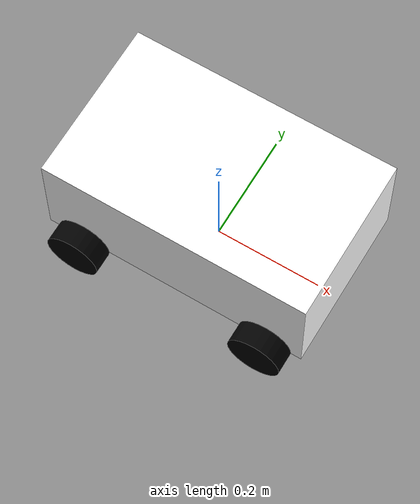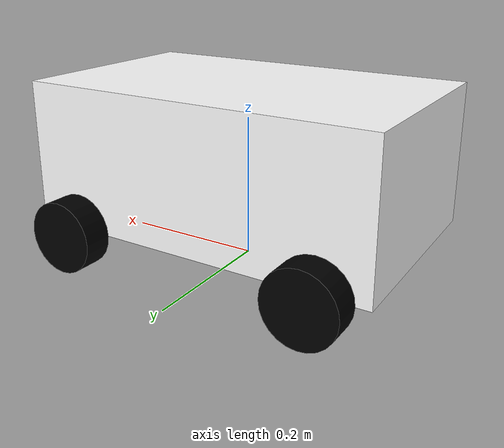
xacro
<?xml version="1.0"?>
<robot xmlns:xacro="http://www.ros.org/wiki/xacro" name="mbot">
<!-- 选择是否用仿真 -->
<xacro:arg name="use_sim" default="true" />

<xacro:include filename="base.urdf.xacro" />
<xacro:include filename="actuator/wheel.urdf.xacro" />
<xacro:include filename="sensor/lidar.urdf.xacro" />
<xacro:include filename="sensor/imu.urdf.xacro" />
<xacro:include filename="ros2_control.xacro" />
<xacro:include filename="$(find mbot_description)/urdf/plugin/gazebo_sensor_plugin.xacro" />

<!-- 声明机器人长宽高 -->
<xacro:property name="car_length" value="0.5" />
<xacro:property name="car_width" value="0.3" />
<xacro:property name="car_height" value="0.2" />
<xacro:property name="car_mass" value="5.0" />

<!-- 声明底板厚度 -->
<xacro:property name="plate_thickness" value="0.01" />

<!-- 声明lidar尺寸 -->
<xacro:property name="lidar_radius" value="0.035" />
<xacro:property name="lidar_height" value="0.04" />
<xacro:property name="lidar_mass" value="0.2"/>

<!-- 声明imu尺寸 -->
<xacro:property name="imu_length" value="0.02" />
<xacro:property name="imu_weight" value="0.027" />
<xacro:property name="imu_height" value="0.004" />
<xacro:property name="imu_mass" value="0.005"/>

<!-- 声明轮子尺寸 -->
<xacro:property name="wheel_radius" value="0.05" />
<xacro:property name="wheel_width" value="0.04" />
<xacro:property name="wheel_mass" value="0.3" />

<!-- 雷达距离前挡板距离 -->
<xacro:property name="lidar_gap_front" value="0.03" />

<!-- 雷达安装位置 -->
<xacro:property name="lidar_x" value="${(car_length / 2) - lidar_gap_front - lidar_radius}" />
<xacro:property name="lidar_z" value="${-(car_height / 2) + plate_thickness + (lidar_height / 2)}" />

<!-- imu安装位置 -->
<xacro:property name="imu_z"   value="${-(car_height / 2) + 0.005}" />

<!-- 车轮安装位置 -->
<xacro:property name="wheel_joint_z" value="${-(car_height / 2)}" />
<xacro:property name="wheel_joint_x" value="${(car_length / 2) - wheel_radius - 0.02}" />
<xacro:property name="wheel_joint_y" value="${(car_width / 2) + (wheel_width / 2)}" />

<!-- 雷达FOV计算 -->
<xacro:property name="dist_to_front" value="${(car_length / 2) - lidar_x}" />
<xacro:property name="half_width" value="${car_width / 2}" />
<xacro:property name="fov_half_angle" value="${atan2(half_width, dist_to_front)}" />
<xacro:property name="safe_min_angle" value="${-(fov_half_angle - 0.05)}" />
<xacro:property name="safe_max_angle" value="${fov_half_angle - 0.05}" />

<!-- 车体大小 -->
<xacro:base_xacro base_length="${car_length}"
base_width="${car_width}"
base_height="${car_height}"
base_mass="${car_mass}"
plate_thickness="${plate_thickness}"
wheel_radius="${wheel_radius}"/>

<!-- mecanum轮 -->
<xacro:mecanum_wheel prefix="front_left"
    x_reflect="1" y_reflect="1"
    wheel_radius="${wheel_radius}"
    wheel_width="${wheel_width}"
    wheel_mass="${wheel_mass}"
    pos_x="${wheel_joint_x}"
    pos_y="${wheel_joint_y}"
    pos_z="${wheel_joint_z}"
/>

<xacro:mecanum_wheel prefix="front_right"
    x_reflect="1" y_reflect="-1"
    wheel_radius="${wheel_radius}"
    wheel_width="${wheel_width}"
    wheel_mass="${wheel_mass}"
    pos_x="${wheel_joint_x}"
    pos_y="${wheel_joint_y}"
    pos_z="${wheel_joint_z}"
/>

<xacro:mecanum_wheel prefix="rear_left"
    x_reflect="-1" y_reflect="1"
    wheel_radius="${wheel_radius}"
    wheel_width="${wheel_width}"
    wheel_mass="${wheel_mass}"
    pos_x="${wheel_joint_x}"
    pos_y="${wheel_joint_y}"
    pos_z="${wheel_joint_z}"
/>

<xacro:mecanum_wheel prefix="rear_right"
    x_reflect="-1" y_reflect="-1"
    wheel_radius="${wheel_radius}"
    wheel_width="${wheel_width}"
    wheel_mass="${wheel_mass}"
    pos_x="${wheel_joint_x}"
    pos_y="${wheel_joint_y}"
    pos_z="${wheel_joint_z}"
/>

<!-- 传感器生成 -->
<xacro:lidar_xacro prefix="lidar"
    parent="base_link"
    lidar_radius="${lidar_radius}"
    lidar_height="${lidar_height}"
    lidar_mass="${lidar_mass}"
    xyz="${lidar_x} 0 ${lidar_z}"
    rpy="0.0 0.0 0.0"/>

<xacro:imu_xacro prefix="imu_center"
    parent="base_link"
    imu_length="${imu_length}"
    imu_weight="${imu_weight}"
    imu_height="${imu_height}"
    imu_mass="${imu_mass}"
    xyz="0.0 0.0 ${imu_z}"/>

<!-- 插件 -->
<xacro:lidar_plugin frame_prefix="lidar_link" min_angle="${safe_min_angle}" max_angle="${safe_max_angle}" />
<xacro:imu_plugin frame_prefix="imu_center_link"/>

<xacro:mbot_ros2_control name="MbotSystem" use_sim="$(arg use_sim)"/>

</robot>

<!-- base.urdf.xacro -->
<robot xmlns:xacro="http://www.ros.org/wiki/xacro" >
    <xacro:include filename="common_inertia.xacro" />

    <xacro:macro name="base_xacro" params="base_length base_width base_height base_mass plate_thickness wheel_radius">
        <!-- 足迹 -->
        <link name="base_footprint"/>

        <link name="base_link">

            <visual>
                <origin xyz="0.0 0.0 0.0" rpy="0.0 0.0 0.0"/>
                <geometry>
                    <box size="${base_length} ${base_width} ${base_height}"/>
                </geometry>
                <material name="white">
                    <color rgba="1.0 1.0 1.0 1.0"/>
                </material>
            </visual>

        <collision>
            <origin xyz="0 0 ${-(base_height/2 - plate_thickness/2)}" rpy="0 0 0"/>
            <geometry>
                <box size="${base_length} ${base_width} ${plate_thickness}"/>
            </geometry>
        </collision>

        <collision>
            <origin xyz="0 0 ${(base_height/2 - plate_thickness/2)}" rpy="0 0 0"/>
            <geometry>
                <box size="${base_length} ${base_width} ${plate_thickness}"/>
            </geometry>
        </collision>

            <xacro:box_inertia m="${base_mass}" d="${base_length}" w="${base_width}" h="${base_height}"/>

        </link>

        <joint name="base_joint" type="fixed">
            <origin xyz="0.0 0.0 ${base_height/2+wheel_radius}" rpy="0.0 0.0 0.0"/>
            <parent link="base_footprint"/>
            <child link="base_link"/>
        </joint>

    </xacro:macro>

</robot>

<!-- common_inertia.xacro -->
<robot xmlns:xacro="http://www.ros.org/wiki/xacro">

    <xacro:macro name="box_inertia" params="m w h d">
        <inertial>
            <origin xyz="0.0 0.0 0.0" rpy="${pi/2} 0.0 ${pi/2}"/><mass value="${m}"/>
            <inertia ixx="${(m/12)*(h*h+d*d)}" ixy="0.0" ixz="0.0"
                     iyy="${(m/12)*(w*w+d*d)}" iyz="0.0"
                     izz="${(m/12)*(w*w+h*h)}"/>
        </inertial>
    </xacro:macro>

    <xacro:macro name="cylinder_inertia" params="m r h">
        <inertial>
            <origin xyz="0.0 0.0 0.0" rpy="${pi/2} 0.0 0.0"/><mass value="${m}"/>
            <inertia ixx="${(m/12)*(3*r*r+h*h)}" ixy="0.0" ixz="0.0"
                     iyy="${(m/12)*(3*r*r+h*h)}" iyz="0.0"
                     izz="${(m/2)*(r*r)}"/>
        </inertial>
    </xacro:macro>

    <xacro:macro name="sphere_inertia" params="m r">
        <inertial>
            <origin xyz="0.0 0.0 0.0" rpy="${pi/2} 0.0 0.0"/><mass value="${m}"/>
            <inertia ixx="${(m/12)*(3*r*r+h*h)}" ixy="0.0" ixz="0.0"
                     iyy="${(m/12)*(3*r*r+h*h)}" iyz="0.0"
                     izz="${(m/2)*(r*r)}"/>
        </inertial>
    </xacro:macro>

</robot>

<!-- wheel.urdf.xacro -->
<robot xmlns:xacro="http://www.ros.org/wiki/xacro">

    <xacro:include filename="../common_inertia.xacro" />

    <xacro:property name="track_width" value="0.35" />
    <xacro:property name="wheelbase" value="0.40" />
    <xacro:property name="wheel_z_offset" value="-0.05" />

    <xacro:macro name="mecanum_wheel" params="prefix x_reflect y_reflect wheel_radius wheel_width wheel_mass pos_x pos_y pos_z">

        <link name="${prefix}_wheel_link">
            <visual >
                <origin xyz="0.0 0.0 0.0" rpy="${pi/2} 0.0 0.0"/>
                <geometry>
                    <cylinder radius="${wheel_radius}" length="${wheel_width}"/>
                </geometry>
                <material name="black">
                    <color rgba="0.0 0.0 0.0 1.0"/>
                </material>
            </visual>

            <collision>
                <origin xyz="0.0 0.0 0.0" rpy="${pi/2} 0.0 0.0"/>
                <geometry>
                    <cylinder radius="${wheel_radius}" length="${wheel_width}"/>
                </geometry>
            </collision>

            <xacro:cylinder_inertia m="${wheel_mass}" r="${wheel_radius}" h="${wheel_width}"/>

        </link>

        <joint name="${prefix}_wheel_joint" type="continuous">
            <origin xyz="${x_reflect * pos_x} ${y_reflect * pos_y} ${pos_z}" rpy="0.0 0.0 0.0"/>
            <parent link="base_link"/>
            <child link="${prefix}_wheel_link"/>
            <axis xyz="0.0 1.0 0.0"/>
            <limit effort="50" velocity="50"/>
            <dynamics damping="0.0" friction="0.05"/>
        </joint>

        <gazebo reference="${prefix}_wheel_link">
            <mu1>2.0</mu1>
            <mu2>0.5</mu2>

            <kp>1000000.0</kp>
            <kd>1.0</kd>
            <fdir1>1 0 0</fdir1>
            <minDepth>0.001</minDepth>

            <material>Gazebo/Black</material>
        </gazebo>

    </xacro:macro>

</robot>

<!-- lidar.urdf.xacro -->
<robot xmlns:xacro="http://www.ros.org/wiki/xacro">

    <xacro:macro name="lidar_xacro" params="prefix parent lidar_radius lidar_height lidar_mass xyz rpy">

        <link name="${prefix}_link">

            <visual >
                <origin xyz="0.0 0.0 0.0" rpy="0.0 0.0 0.0"/>
                <geometry>
                    <cylinder radius="${lidar_radius}" length="${lidar_height}"/>
                </geometry>
                <material name="blue">
                    <color rgba="0.0 0.0 1.0 1.0"/>
                </material>
            </visual>

            <collision>
                <origin xyz="0.0 0.0 0.0" rpy="0.0 0.0 0.0"/>
                <geometry>
                    <cylinder radius="${lidar_radius}" length="${lidar_height}"/>
                </geometry>
            </collision>

            <xacro:cylinder_inertia m="${lidar_mass}" r="${lidar_radius}" h="${lidar_height}"/>
        </link>

        <joint name="${prefix}_joint" type="fixed">

            <origin xyz="${xyz}" rpy="${rpy}"/>
            <parent link="${parent}"/>
            <child link="${prefix}_link"/>

        </joint>

    </xacro:macro>

</robot>

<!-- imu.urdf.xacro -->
<robot xmlns:xacro="http://www.ros.org/wiki/xacro">

    <xacro:macro name="imu_xacro" params="prefix parent imu_length imu_weight imu_height imu_mass xyz">
        <link name="${prefix}_link">
            <visual>
                <origin xyz="0.0 0.0 0.0" rpy="0.0 0.0 0.0"/>
                <geometry>
                    <box size="${imu_length} ${imu_weight} ${imu_height}"/>
                </geometry>
                <material name="purple">
                    <color rgba="0.5 0.0 0.5 1.0"/>
                </material>
            </visual>
            <collision>
                <origin xyz="0.0 0.0 0.0" rpy="0.0 0.0 0.0"/>
                <geometry>
                    <box size="${imu_length} ${imu_weight} ${imu_height}"/>
                </geometry>
            </collision>

            <xacro:box_inertia m="${imu_mass}" w="${imu_length}" h="${imu_weight}" d="${imu_height}"/>
        </link>
        <joint name="${prefix}_joint" type="fixed">
            <origin xyz="${xyz}" rpy="0.0 0.0 0.0"/>
            <parent link="${parent}"/>
            <child link="${prefix}_link"/>
        </joint>
    </xacro:macro>
</robot>
